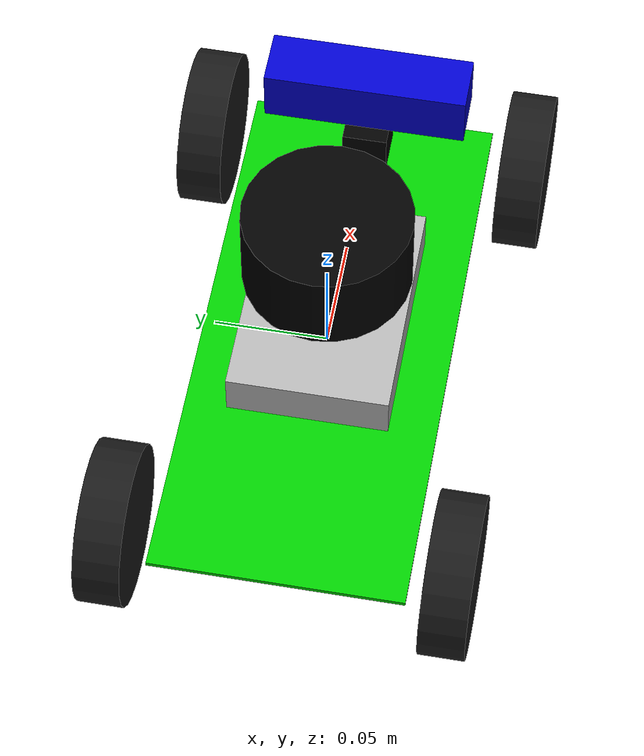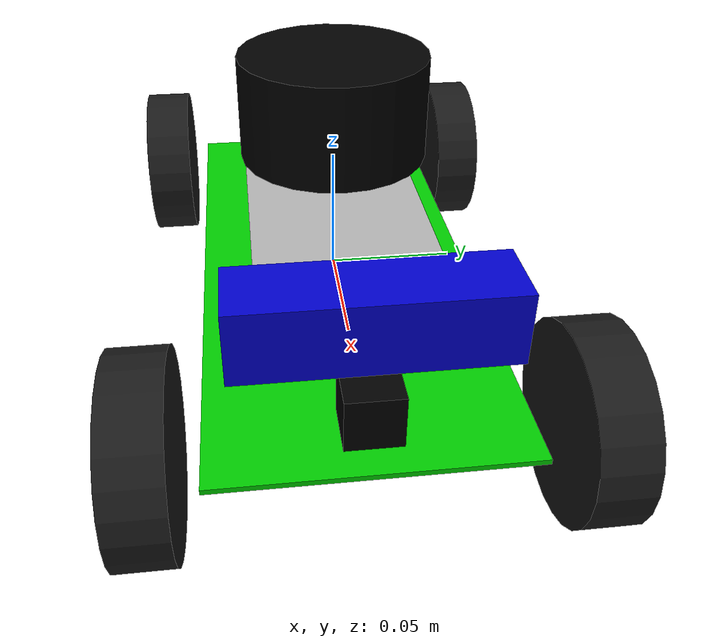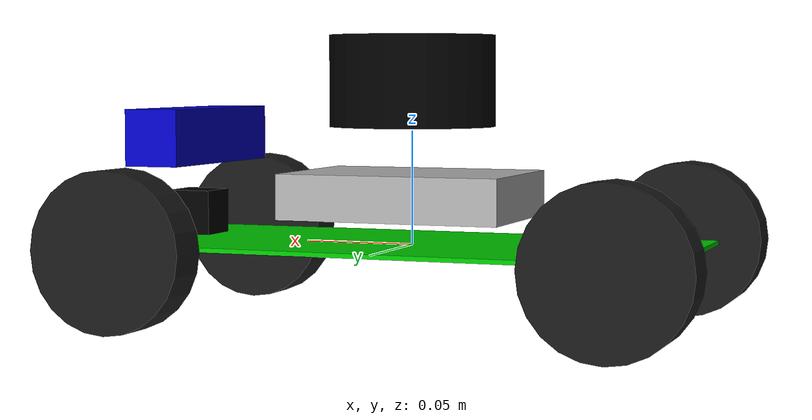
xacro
<?xml version="1.0"?>
<robot xmlns:xacro="http://www.ros.org/wiki/xacro" name="jetracer">

  <!-- Properties -->
  <xacro:property name="base_height" value="0.25"/>    <!-- 250mm total height -->
  <xacro:property name="base_width" value="0.11"/>     <!-- 110mm total width -->
  <xacro:property name="base_thickness" value="0.002"/> <!-- 2mm thickness -->
  <xacro:property name="wheel_radius" value="0.035"/>  <!-- 70mm diameter -->
  <xacro:property name="wheel_width" value="0.02"/>    <!-- 20mm width -->

  <!-- Camera Properties -->
  <xacro:property name="csi_size" value="0.02"/>       <!-- 20mm -->
  <xacro:property name="d435i_width" value="0.09"/>    <!-- 90mm -->
  <xacro:property name="d435i_height" value="0.025"/>  <!-- 25mm -->
  <xacro:property name="d435i_depth" value="0.025"/>   <!-- 25mm -->

  <!-- RPLIDAR Properties -->
  <xacro:property name="lidar_radius" value="0.0365"/> <!-- 73mm diameter -->
  <xacro:property name="lidar_height" value="0.04"/>   <!-- 40mm height -->

  <!-- Base Footprint -->
  <!-- Base Link -->
  <link name="base_link">
    <visual>
      <origin xyz="0 0 0" rpy="0 0 0"/>
      <geometry>
        <box size="${base_height} ${base_width} ${base_thickness}"/>
      </geometry>
      <material name="green">
        <color rgba="0.0 0.8 0.0 1.0"/>
      </material>
    </visual>
    <collision>
      <origin xyz="0 0 0" rpy="0 0 0"/>
      <geometry>
        <box size="${base_height} ${base_width} ${base_thickness}"/>
      </geometry>
    </collision>
    <inertial>
      <mass value="0.5"/>
      <origin xyz="0 0 0" rpy="0 0 0"/>
      <inertia ixx="0.001" ixy="0" ixz="0" iyy="0.001" iyz="0" izz="0.001"/>
    </inertial>
  </link>

  <!-- Jetson Nano -->
  <link name="jetson_nano_link">
    <visual>
      <geometry>
        <box size="0.1 0.07 0.02"/>
      </geometry>
      <material name="grey">
        <color rgba="0.7 0.7 0.7 1.0"/>
      </material>
    </visual>
    <collision>
      <geometry>
        <box size="0.1 0.07 0.02"/>
      </geometry>
    </collision>
    <inertial>
      <mass value="0.1"/>
      <inertia ixx="${1/12 * 0.1 * (0.07*0.07 + 0.02*0.02)}" ixy="0" ixz="0"
               iyy="${1/12 * 0.1 * (0.1*0.1 + 0.02*0.02)}" iyz="0"
               izz="${1/12 * 0.1 * (0.1*0.1 + 0.07*0.07)}"/>
    </inertial>
  </link>

  <joint name="jetson_nano_joint" type="fixed">
    <parent link="base_link"/>
    <child link="jetson_nano_link"/>
    <origin xyz="0 0 ${base_thickness + 0.02}" rpy="0 0 0"/>
    <publish>true</publish>
  </joint>

  <!-- CSI Camera -->
  <link name="csi_camera_link">
    <visual>
      <geometry>
        <box size="${csi_size} ${csi_size} ${csi_size}"/>
      </geometry>
      <material name="black">
        <color rgba="0.0 0.0 0.0 1.0"/>
      </material>
    </visual>
    <collision>
      <geometry>
        <box size="${csi_size} ${csi_size} ${csi_size}"/>
      </geometry>
    </collision>
    <inertial>
      <mass value="0.01"/>
      <inertia ixx="0.0001" ixy="0" ixz="0" iyy="0.0001" iyz="0" izz="0.0001"/>
    </inertial>
  </link>

  <joint name="csi_camera_joint" type="fixed">
    <parent link="base_link"/>
    <child link="csi_camera_link"/>
    <origin xyz="${base_height/2 - 0.02} 0 ${base_thickness + csi_size/2}" rpy="0 0 0"/>
    <publish>true</publish>
  </joint>

  <!-- D435i Camera -->
  <link name="d435i_link">
    <visual>
      <geometry>
        <box size="${d435i_depth} ${d435i_width} ${d435i_height}"/>
      </geometry>
      <material name="blue">
        <color rgba="0.0 0.0 0.8 1.0"/>
      </material>
    </visual>
    <collision>
      <geometry>
        <box size="${d435i_depth} ${d435i_width} ${d435i_height}"/>
      </geometry>
    </collision>
    <inertial>
      <mass value="0.1"/>
      <inertia ixx="0.0001" ixy="0" ixz="0" iyy="0.0001" iyz="0" izz="0.0001"/>
    </inertial>
  </link>

  <joint name="d435i_joint" type="fixed">
    <parent link="base_link"/>
    <child link="d435i_link"/>
    <origin xyz="${base_height/2 - 0.02} 0 ${base_thickness + d435i_height + 0.02}" rpy="0 0 0"/>
    <publish>true</publish>
  </joint>

  <!-- RPLIDAR -->
  <link name="lidar_link">
    <visual>
      <geometry>
        <cylinder radius="${lidar_radius}" length="${lidar_height}"/>
      </geometry>
      <material name="black">
        <color rgba="0.0 0.0 0.0 1.0"/>
      </material>
    </visual>
    <collision>
      <geometry>
        <cylinder radius="${lidar_radius}" length="${lidar_height}"/>
      </geometry>
    </collision>
    <inertial>
      <mass value="0.19"/>
      <inertia ixx="0.0001" ixy="0" ixz="0" iyy="0.0001" iyz="0" izz="0.0001"/>
    </inertial>
  </link>

  <joint name="lidar_joint" type="fixed">
    <parent link="base_link"/>
    <child link="lidar_link"/>
    <origin xyz="0 0 ${base_thickness + lidar_height/2 + 0.05}" rpy="0 0 0"/>
    <publish>true</publish>
  </joint>

  <!-- Wheel Macro -->
  <xacro:macro name="wheel" params="prefix x y">
    <link name="${prefix}_wheel">
      <visual>
        <geometry>
          <cylinder radius="${wheel_radius}" length="${wheel_width}"/>
        </geometry>
        <material name="black">
          <color rgba="0.1 0.1 0.1 1.0"/>
        </material>
      </visual>
      <collision>
        <geometry>
          <cylinder radius="${wheel_radius}" length="${wheel_width}"/>
        </geometry>
      </collision>
      <inertial>
        <mass value="0.2"/>
        <inertia ixx="0.001" ixy="0" ixz="0" iyy="0.001" iyz="0" izz="0.001"/>
      </inertial>
    <publish>true</publish>
    </link>

    <joint name="${prefix}_wheel_joint" type="continuous">
      <parent link="base_link"/>
      <child link="${prefix}_wheel"/>
      <origin xyz="${x} ${y} 0" rpy="${pi/2} 0 0"/>
      <axis xyz="0 0 1"/>
      <dynamics damping="0.1" friction="0.1"/>
    </joint>

    <!-- Transmission for ROS Control -->
    <transmission name="${prefix}_wheel_trans">
      <type>transmission_interface/SimpleTransmission</type>
      <joint name="${prefix}_wheel_joint">
        <hardwareInterface>hardware_interface/VelocityJointInterface</hardwareInterface>
      </joint>
      <actuator name="${prefix}_wheel_motor">
        <hardwareInterface>hardware_interface/VelocityJointInterface</hardwareInterface>
        <mechanicalReduction>1</mechanicalReduction>
      </actuator>
    </transmission>
  </xacro:macro>

  <!-- Create wheels -->
  <xacro:wheel prefix="front_left" x="${base_height/2-wheel_radius/2}" y="${base_width/2+wheel_radius/2}"/>
  <xacro:wheel prefix="front_right" x="${base_height/2-wheel_radius/2}" y="-${base_width/2+wheel_radius/2}"/>
  <xacro:wheel prefix="rear_left" x="-${base_height/2-wheel_radius/2}" y="${base_width/2+wheel_radius/2}"/>
  <xacro:wheel prefix="rear_right" x="-${base_height/2-wheel_radius/2}" y="-${base_width/2+wheel_radius/2}"/>

  <!-- Gazebo plugins -->
<gazebo>
  <!-- ROS Control -->
  <plugin name="gazebo_ros_control" filename="libgazebo_ros_control.so">
    <robotNamespace>/jetracer</robotNamespace>
    <robotSimType>gazebo_ros_control/DefaultRobotHWSim</robotSimType>
  </plugin>
</gazebo>

<!-- CSI Camera Controller -->
<gazebo reference="csi_camera_link">
  <sensor type="camera" name="csi_camera">
    <update_rate>30.0</update_rate>
    <camera name="csi">
      <horizontal_fov>1.3962634</horizontal_fov>
      <image>
        <width>1280</width>
        <height>720</height>
        <format>R8G8B8</format>
      </image>
      <clip>
        <near>0.02</near>
        <far>300</far>
      </clip>
    </camera>
    <plugin name="camera_controller" filename="libgazebo_ros_camera.so">
      <alwaysOn>true</alwaysOn>
      <updateRate>30.0</updateRate>
      <cameraName>csi_camera</cameraName>
      <imageTopicName>image_raw</imageTopicName>
      <cameraInfoTopicName>camera_info</cameraInfoTopicName>
      <frameName>csi_camera_link</frameName>
    </plugin>
  </sensor>
</gazebo>

<!-- D435i Camera Controller -->
<gazebo reference="d435i_link">
  <sensor type="depth" name="d435i">
    <update_rate>30.0</update_rate>
    <camera>
      <horizontal_fov>1.5184351</horizontal_fov>
      <image>
        <width>1280</width>
        <height>720</height>
        <format>R8G8B8</format>
      </image>
      <clip>
        <near>0.1</near>
        <far>100</far>
      </clip>
    </camera>
    <plugin name="d435i_controller" filename="libgazebo_ros_openni_kinect.so">
      <baseline>0.1</baseline>
      <alwaysOn>true</alwaysOn>
      <updateRate>30.0</updateRate>
      <cameraName>d435i</cameraName>
      <frameName>d435i_link</frameName>
      <imageTopicName>rgb/image_raw</imageTopicName>
      <depthImageTopicName>depth/image_raw</depthImageTopicName>
      <pointCloudTopicName>depth/points</pointCloudTopicName>
      <cameraInfoTopicName>rgb/camera_info</cameraInfoTopicName>
      <depthImageCameraInfoTopicName>depth/camera_info</depthImageCameraInfoTopicName>
    </plugin>
  </sensor>
</gazebo>

<!-- RPLIDAR Controller -->
<gazebo reference="lidar_link">
  <sensor type="ray" name="rplidar">
    <pose>0 0 0 0 0 0</pose>
    <visualize>false</visualize>
    <update_rate>10</update_rate>
    <ray>
      <scan>
        <horizontal>
          <samples>360</samples>
          <resolution>1</resolution>
          <min_angle>-3.14159</min_angle>
          <max_angle>3.14159</max_angle>
        </horizontal>
      </scan>
      <range>
        <min>0.2</min>
        <max>12.0</max>
        <resolution>0.01</resolution>
      </range>
    </ray>
    <plugin name="rplidar_controller" filename="libgazebo_ros_laser.so">
      <topicName>scan</topicName>
      <frameName>lidar_link</frameName>
    </plugin>
  </sensor>
</gazebo>

<!-- Motor Controllers -->
<gazebo>
  <plugin name="differential_drive_controller" filename="libgazebo_ros_diff_drive.so">
    <robotNamespace>/jetracer</robotNamespace>
    <leftJoint>rear_left_wheel_joint</leftJoint>
    <rightJoint>rear_right_wheel_joint</rightJoint>
    <wheelSeparation>${base_width + wheel_width}</wheelSeparation>
    <wheelDiameter>${2 * wheel_radius}</wheelDiameter>
    <wheelAcceleration>1</wheelAcceleration>
    <wheelTorque>20</wheelTorque>
    <updateRate>50</updateRate>
    <odometrySource>world</odometrySource>
    <publishOdom>true</publishOdom>
    <publishWheelTF>true</publishWheelTF>
    <publishOdomTF>true</publishOdomTF>
    <odometryFrame>odom</odometryFrame>
    <robotBaseFrame>base_link</robotBaseFrame>
  </plugin>
</gazebo>

  <gazebo>
    <plugin name="joint_state_publisher" filename="libgazebo_ros_joint_state_publisher.so">
      <robotNamespace>/jetracer</robotNamespace>
      <jointName>front_left_wheel_joint, front_right_wheel_joint, rear_left_wheel_joint, rear_right_wheel_joint</jointName>
      <updateRate>50.0</updateRate>
    </plugin>
  </gazebo>

</robot>
